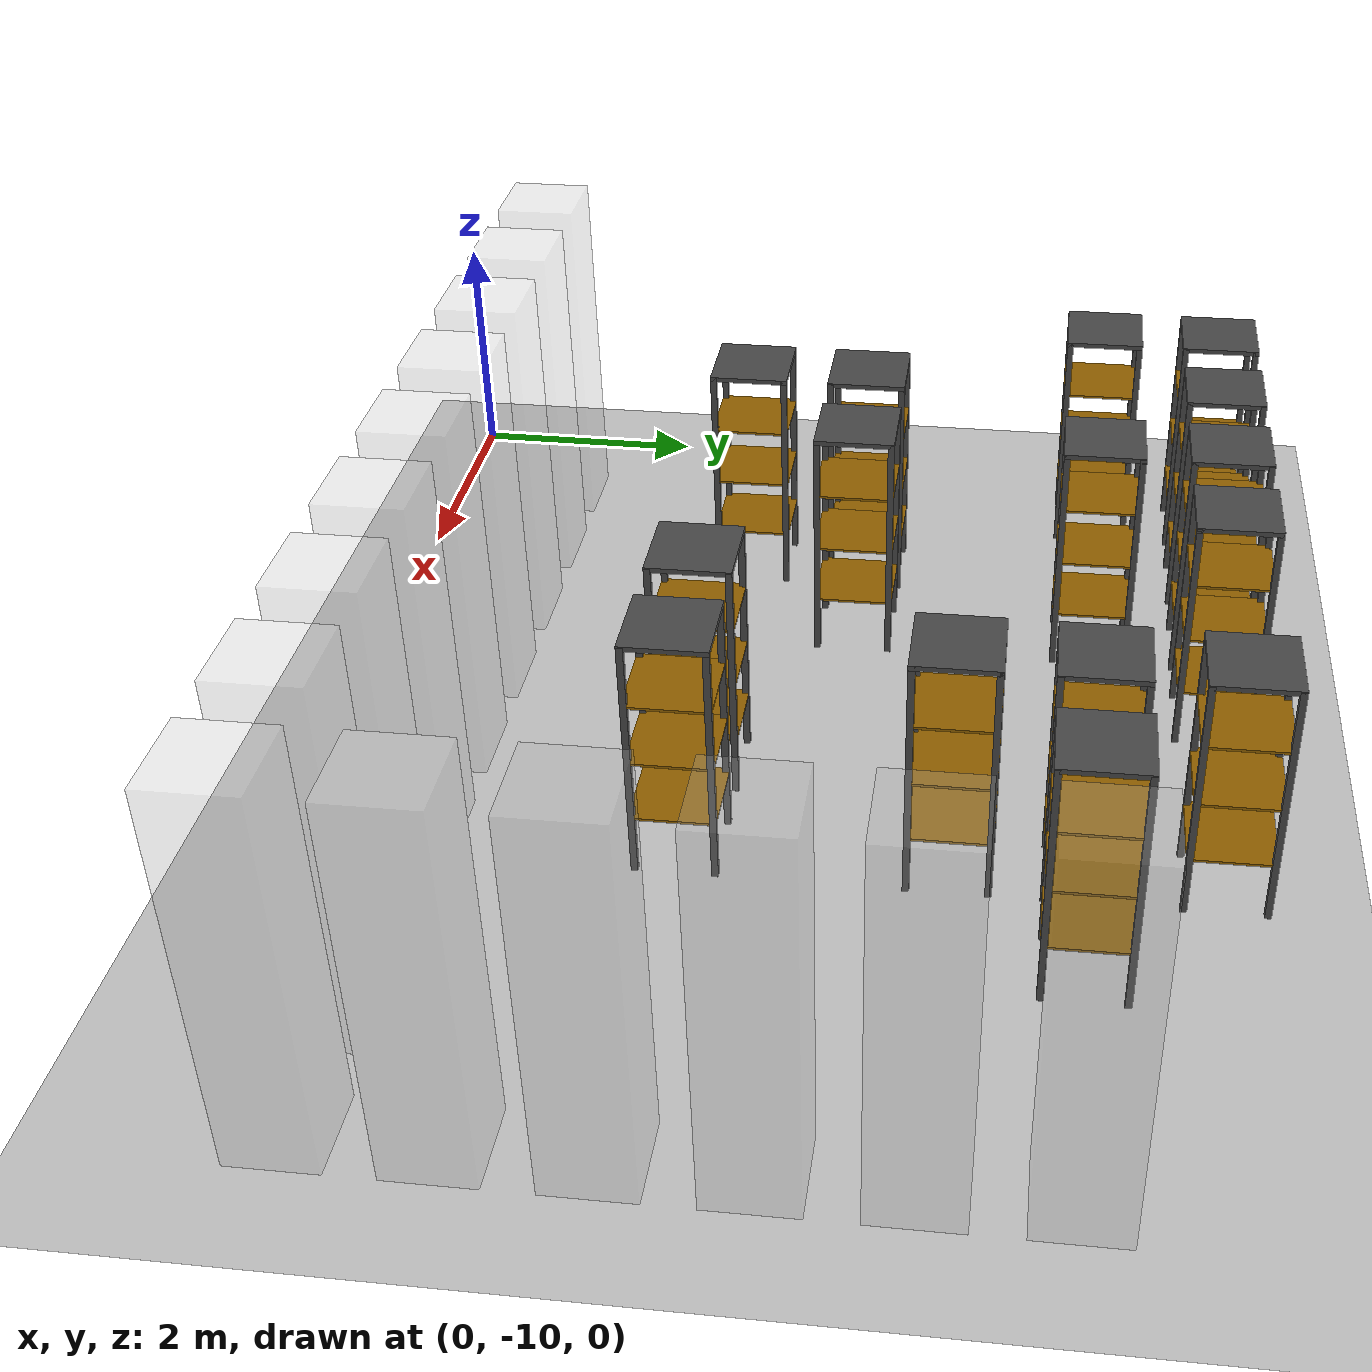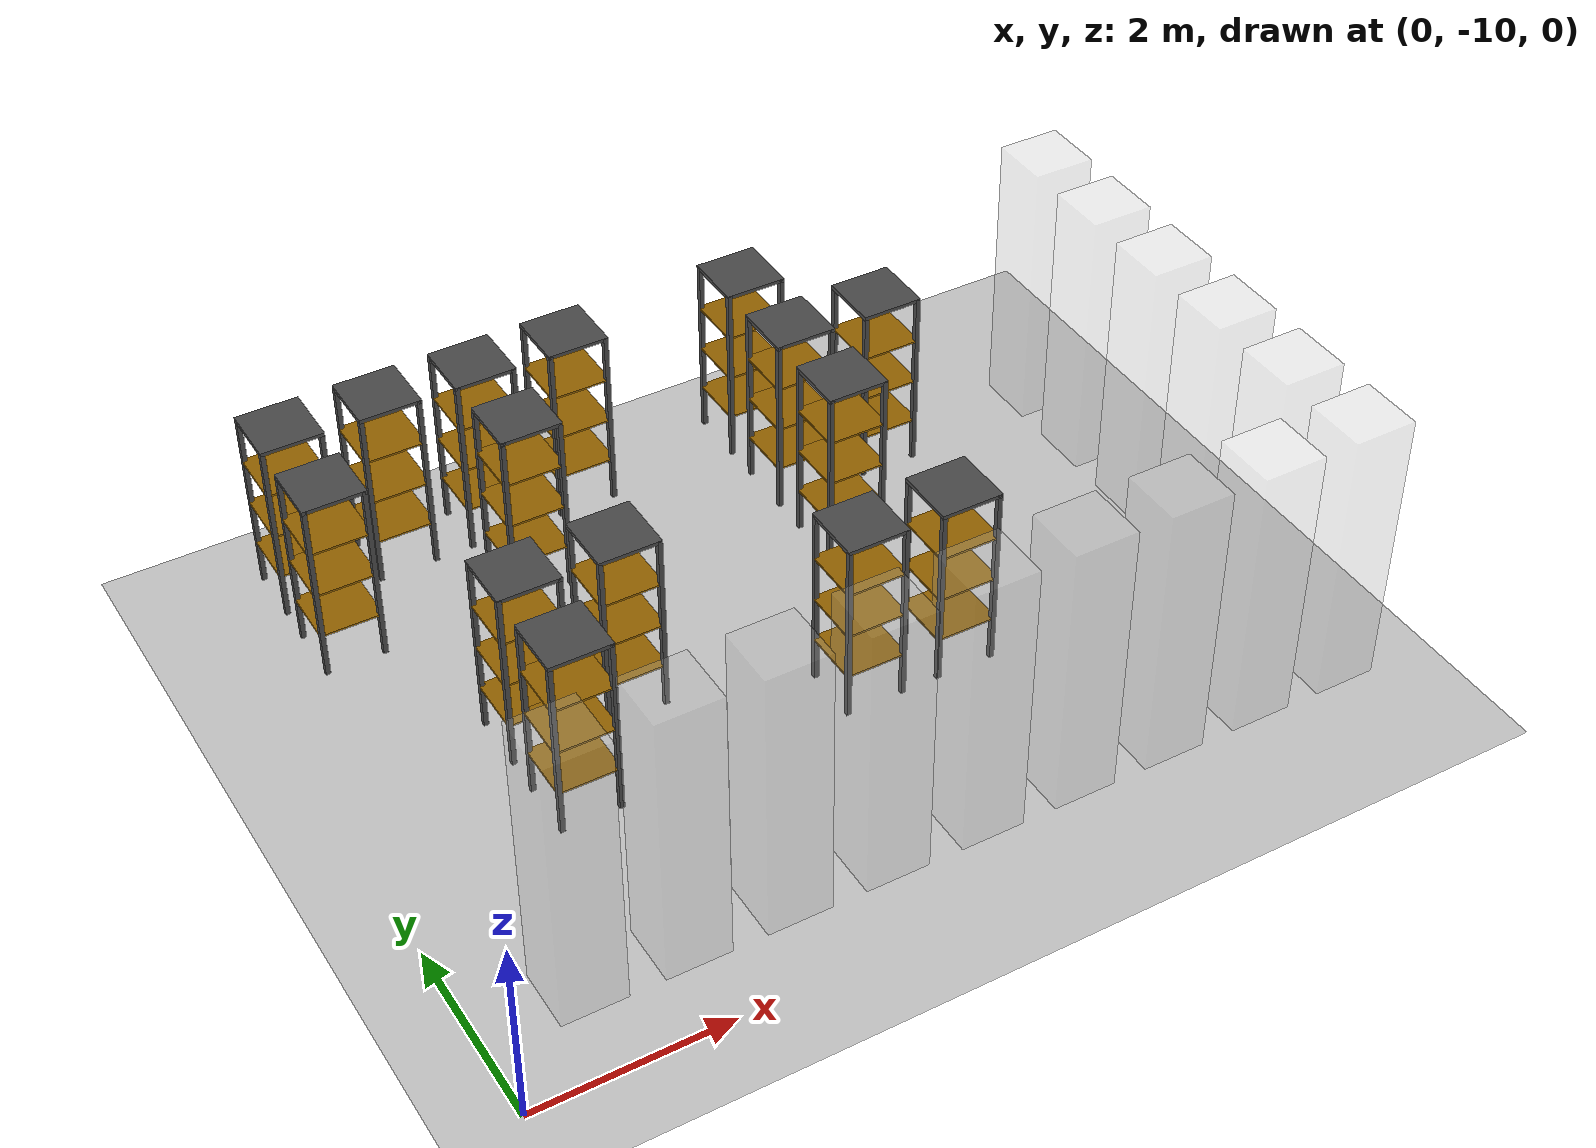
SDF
<sdf version="1.6">
 <world name="default">
  <model name="ground_plane">
   <static>1</static>
   <link name="link">
    <collision name="collision">
     <geometry><plane><normal>0 0 1</normal><size>50 50</size></plane></geometry>
     <surface><friction><ode><mu>100</mu><mu2>50</mu2></ode></friction></surface>
    </collision>
    <visual name="visual">
     <cast_shadows>0</cast_shadows>
     <geometry><plane><normal>0 0 1</normal><size>100 100</size></plane></geometry>
     <material>
      <script><uri>file://media/materials/scripts/gazebo.material</uri><name>Gazebo/Grey</name></script>
     </material>
    </visual>
    <velocity_decay><linear>0</linear><angular>0</angular></velocity_decay>
   </link>
  </model>
  <model name="pole_0_10">
   <static>1</static>
   <link name="main_block">
    <pose>0 0 1.5 0 -0 0</pose>
    <collision name="collision"><geometry><box><size>0.65 0.65 3</size></box></geometry></collision>
    <visual name="visual">
     <geometry><box><size>0.65 0.65 3</size></box></geometry>
     <material><ambient>0.5 0.5 0.5 0.25</ambient><diffuse>0.75 0.75 0.75 0.25</diffuse></material>
    </visual>
   </link>
   <pose>1 -9 0 0 -0 0</pose>
  </model>
  <model name="pole_0_11">
   <static>1</static>
   <link name="main_block">
    <pose>0 0 1.5 0 -0 0</pose>
    <collision name="collision"><geometry><box><size>0.65 0.65 3</size></box></geometry></collision>
    <visual name="visual">
     <geometry><box><size>0.65 0.65 3</size></box></geometry>
     <material><ambient>0.5 0.5 0.5 0.25</ambient><diffuse>0.75 0.75 0.75 0.25</diffuse></material>
    </visual>
   </link>
   <pose>2 -9 0 0 -0 0</pose>
  </model>
  <model name="pole_0_12">
   <static>1</static>
   <link name="main_block">
    <pose>0 0 1.5 0 -0 0</pose>
    <collision name="collision"><geometry><box><size>0.65 0.65 3</size></box></geometry></collision>
    <visual name="visual">
     <geometry><box><size>0.65 0.65 3</size></box></geometry>
     <material><ambient>0.5 0.5 0.5 0.25</ambient><diffuse>0.75 0.75 0.75 0.25</diffuse></material>
    </visual>
   </link>
   <pose>3 -9 0 0 -0 0</pose>
  </model>
  <model name="pole_0_13">
   <static>1</static>
   <link name="main_block">
    <pose>0 0 1.5 0 -0 0</pose>
    <collision name="collision"><geometry><box><size>0.65 0.65 3</size></box></geometry></collision>
    <visual name="visual">
     <geometry><box><size>0.65 0.65 3</size></box></geometry>
     <material><ambient>0.5 0.5 0.5 0.25</ambient><diffuse>0.75 0.75 0.75 0.25</diffuse></material>
    </visual>
   </link>
   <pose>4 -9 0 0 -0 0</pose>
  </model>
  <model name="pole_0_14">
   <static>1</static>
   <link name="main_block">
    <pose>0 0 1.5 0 -0 0</pose>
    <collision name="collision"><geometry><box><size>0.65 0.65 3</size></box></geometry></collision>
    <visual name="visual">
     <geometry><box><size>0.65 0.65 3</size></box></geometry>
     <material><ambient>0.5 0.5 0.5 0.25</ambient><diffuse>0.75 0.75 0.75 0.25</diffuse></material>
    </visual>
   </link>
   <pose>5 -9 0 0 -0 0</pose>
  </model>
  <model name="pole_0_15">
   <static>1</static>
   <link name="main_block">
    <pose>0 0 1.5 0 -0 0</pose>
    <collision name="collision"><geometry><box><size>0.65 0.65 3</size></box></geometry></collision>
    <visual name="visual">
     <geometry><box><size>0.65 0.65 3</size></box></geometry>
     <material><ambient>0.5 0.5 0.5 0.25</ambient><diffuse>0.75 0.75 0.75 0.25</diffuse></material>
    </visual>
   </link>
   <pose>6 -9 0 0 -0 0</pose>
  </model>
  <model name="pole_0_16">
   <static>1</static>
   <link name="main_block">
    <pose>0 0 1.5 0 -0 0</pose>
    <collision name="collision"><geometry><box><size>0.65 0.65 3</size></box></geometry></collision>
    <visual name="visual">
     <geometry><box><size>0.65 0.65 3</size></box></geometry>
     <material><ambient>0.5 0.5 0.5 0.25</ambient><diffuse>0.75 0.75 0.75 0.25</diffuse></material>
    </visual>
   </link>
   <pose>7 -9 0 0 -0 0</pose>
  </model>
  <model name="pole_0_17">
   <static>1</static>
   <link name="main_block">
    <pose>0 0 1.5 0 -0 0</pose>
    <collision name="collision"><geometry><box><size>0.65 0.65 3</size></box></geometry></collision>
    <visual name="visual">
     <geometry><box><size>0.65 0.65 3</size></box></geometry>
     <material><ambient>0.5 0.5 0.5 0.25</ambient><diffuse>0.75 0.75 0.75 0.25</diffuse></material>
    </visual>
   </link>
   <pose>8 -9 0 0 -0 0</pose>
  </model>
  <model name="pole_0_18">
   <static>1</static>
   <link name="main_block">
    <pose>0 0 1.5 0 -0 0</pose>
    <collision name="collision"><geometry><box><size>0.65 0.65 3</size></box></geometry></collision>
    <visual name="visual">
     <geometry><box><size>0.65 0.65 3</size></box></geometry>
     <material><ambient>0.5 0.5 0.5 0.25</ambient><diffuse>0.75 0.75 0.75 0.25</diffuse></material>
    </visual>
   </link>
   <pose>9 -9 0 0 -0 0</pose>
  </model>
  <model name="pole_1_18">
   <static>1</static>
   <link name="main_block">
    <pose>0 0 1.5 0 -0 0</pose>
    <collision name="collision"><geometry><box><size>0.65 0.65 3</size></box></geometry></collision>
    <visual name="visual">
     <geometry><box><size>0.65 0.65 3</size></box></geometry>
     <material><ambient>0.5 0.5 0.5 0.25</ambient><diffuse>0.75 0.75 0.75 0.25</diffuse></material>
    </visual>
   </link>
   <pose>9 -8 0 0 -0 0</pose>
  </model>
  <model name="warehouse_shelf_2_11">
   <static>1</static>
   <link name="main_block">
    <pose>0 0 1.25 0 -0 0</pose>
    <collision name="collision"><geometry><box><size>0.65 0.65 1.5</size></box></geometry></collision>
   </link>
   <link name="leg_1">
    <pose>0.3 0.3 1 0 -0 0</pose>
    <collision name="collision"><geometry><box><size>0.05 0.05 2</size></box></geometry></collision>
    <visual name="visual">
     <geometry><box><size>0.05 0.05 2</size></box></geometry>
     <material><ambient>0.2 0.2 0.2 1</ambient><diffuse>0.3 0.3 0.3 1</diffuse></material>
    </visual>
   </link>
   <link name="leg_2">
    <pose>-0.3 0.3 1 0 -0 0</pose>
    <collision name="collision"><geometry><box><size>0.05 0.05 2</size></box></geometry></collision>
    <visual name="visual">
     <geometry><box><size>0.05 0.05 2</size></box></geometry>
     <material><ambient>0.2 0.2 0.2 1</ambient><diffuse>0.3 0.3 0.3 1</diffuse></material>
    </visual>
   </link>
   <link name="leg_3">
    <pose>-0.3 -0.3 1 0 -0 0</pose>
    <collision name="collision"><geometry><box><size>0.05 0.05 2</size></box></geometry></collision>
    <visual name="visual">
     <geometry><box><size>0.05 0.05 2</size></box></geometry>
     <material><ambient>0.2 0.2 0.2 1</ambient><diffuse>0.3 0.3 0.3 1</diffuse></material>
    </visual>
   </link>
   <link name="leg_4">
    <pose>0.3 -0.3 1 0 -0 0</pose>
    <collision name="collision"><geometry><box><size>0.05 0.05 2</size></box></geometry></collision>
    <visual name="visual">
     <geometry><box><size>0.05 0.05 2</size></box></geometry>
     <material><ambient>0.2 0.2 0.2 1</ambient><diffuse>0.3 0.3 0.3 1</diffuse></material>
    </visual>
   </link>
   <link name="shelf_0">
    <pose>0 0 0.49 0 -0 0</pose>
    <visual name="visual">
     <geometry><box><size>0.649 0.649 0.02</size></box></geometry>
     <material><ambient>0.2 0.05 0 1</ambient><diffuse>0.6 0.4 0 1</diffuse></material>
    </visual>
   </link>
   <link name="shelf_1">
    <pose>0 0 0.99 0 -0 0</pose>
    <visual name="visual">
     <geometry><box><size>0.649 0.649 0.02</size></box></geometry>
     <material><ambient>0.2 0.05 0 1</ambient><diffuse>0.6 0.4 0 1</diffuse></material>
    </visual>
   </link>
   <link name="shelf_2">
    <pose>0 0 1.49 0 -0 0</pose>
    <visual name="visual">
     <geometry><box><size>0.649 0.649 0.02</size></box></geometry>
     <material><ambient>0.2 0.05 0 1</ambient><diffuse>0.6 0.4 0 1</diffuse></material>
    </visual>
   </link>
   <link name="shelf_top">
    <pose>0 0 1.99 0 -0 0</pose>
    <visual name="visual">
     <geometry><box><size>0.65 0.65 0.04</size></box></geometry>
     <material><ambient>0.2 0.2 0.2 1</ambient><diffuse>0.3 0.3 0.3 1</diffuse></material>
    </visual>
   </link>
   <pose>2 -7 0 0 -0 0</pose>
  </model>
  <model name="warehouse_shelf_2_14">
   <static>1</static>
   <link name="main_block">
    <pose>0 0 1.25 0 -0 0</pose>
    <collision name="collision"><geometry><box><size>0.65 0.65 1.5</size></box></geometry></collision>
   </link>
   <link name="leg_1">
    <pose>0.3 0.3 1 0 -0 0</pose>
    <collision name="collision"><geometry><box><size>0.05 0.05 2</size></box></geometry></collision>
    <visual name="visual">
     <geometry><box><size>0.05 0.05 2</size></box></geometry>
     <material><ambient>0.2 0.2 0.2 1</ambient><diffuse>0.3 0.3 0.3 1</diffuse></material>
    </visual>
   </link>
   <link name="leg_2">
    <pose>-0.3 0.3 1 0 -0 0</pose>
    <collision name="collision"><geometry><box><size>0.05 0.05 2</size></box></geometry></collision>
    <visual name="visual">
     <geometry><box><size>0.05 0.05 2</size></box></geometry>
     <material><ambient>0.2 0.2 0.2 1</ambient><diffuse>0.3 0.3 0.3 1</diffuse></material>
    </visual>
   </link>
   <link name="leg_3">
    <pose>-0.3 -0.3 1 0 -0 0</pose>
    <collision name="collision"><geometry><box><size>0.05 0.05 2</size></box></geometry></collision>
    <visual name="visual">
     <geometry><box><size>0.05 0.05 2</size></box></geometry>
     <material><ambient>0.2 0.2 0.2 1</ambient><diffuse>0.3 0.3 0.3 1</diffuse></material>
    </visual>
   </link>
   <link name="leg_4">
    <pose>0.3 -0.3 1 0 -0 0</pose>
    <collision name="collision"><geometry><box><size>0.05 0.05 2</size></box></geometry></collision>
    <visual name="visual">
     <geometry><box><size>0.05 0.05 2</size></box></geometry>
     <material><ambient>0.2 0.2 0.2 1</ambient><diffuse>0.3 0.3 0.3 1</diffuse></material>
    </visual>
   </link>
   <link name="shelf_0">
    <pose>0 0 0.49 0 -0 0</pose>
    <visual name="visual">
     <geometry><box><size>0.649 0.649 0.02</size></box></geometry>
     <material><ambient>0.2 0.05 0 1</ambient><diffuse>0.6 0.4 0 1</diffuse></material>
    </visual>
   </link>
   <link name="shelf_1">
    <pose>0 0 0.99 0 -0 0</pose>
    <visual name="visual">
     <geometry><box><size>0.649 0.649 0.02</size></box></geometry>
     <material><ambient>0.2 0.05 0 1</ambient><diffuse>0.6 0.4 0 1</diffuse></material>
    </visual>
   </link>
   <link name="shelf_2">
    <pose>0 0 1.49 0 -0 0</pose>
    <visual name="visual">
     <geometry><box><size>0.649 0.649 0.02</size></box></geometry>
     <material><ambient>0.2 0.05 0 1</ambient><diffuse>0.6 0.4 0 1</diffuse></material>
    </visual>
   </link>
   <link name="shelf_top">
    <pose>0 0 1.99 0 -0 0</pose>
    <visual name="visual">
     <geometry><box><size>0.65 0.65 0.04</size></box></geometry>
     <material><ambient>0.2 0.2 0.2 1</ambient><diffuse>0.3 0.3 0.3 1</diffuse></material>
    </visual>
   </link>
   <pose>5 -7 0 0 -0 0</pose>
  </model>
  <model name="warehouse_shelf_2_15">
   <static>1</static>
   <link name="main_block">
    <pose>0 0 1.25 0 -0 0</pose>
    <collision name="collision"><geometry><box><size>0.65 0.65 1.5</size></box></geometry></collision>
   </link>
   <link name="leg_1">
    <pose>0.3 0.3 1 0 -0 0</pose>
    <collision name="collision"><geometry><box><size>0.05 0.05 2</size></box></geometry></collision>
    <visual name="visual">
     <geometry><box><size>0.05 0.05 2</size></box></geometry>
     <material><ambient>0.2 0.2 0.2 1</ambient><diffuse>0.3 0.3 0.3 1</diffuse></material>
    </visual>
   </link>
   <link name="leg_2">
    <pose>-0.3 0.3 1 0 -0 0</pose>
    <collision name="collision"><geometry><box><size>0.05 0.05 2</size></box></geometry></collision>
    <visual name="visual">
     <geometry><box><size>0.05 0.05 2</size></box></geometry>
     <material><ambient>0.2 0.2 0.2 1</ambient><diffuse>0.3 0.3 0.3 1</diffuse></material>
    </visual>
   </link>
   <link name="leg_3">
    <pose>-0.3 -0.3 1 0 -0 0</pose>
    <collision name="collision"><geometry><box><size>0.05 0.05 2</size></box></geometry></collision>
    <visual name="visual">
     <geometry><box><size>0.05 0.05 2</size></box></geometry>
     <material><ambient>0.2 0.2 0.2 1</ambient><diffuse>0.3 0.3 0.3 1</diffuse></material>
    </visual>
   </link>
   <link name="leg_4">
    <pose>0.3 -0.3 1 0 -0 0</pose>
    <collision name="collision"><geometry><box><size>0.05 0.05 2</size></box></geometry></collision>
    <visual name="visual">
     <geometry><box><size>0.05 0.05 2</size></box></geometry>
     <material><ambient>0.2 0.2 0.2 1</ambient><diffuse>0.3 0.3 0.3 1</diffuse></material>
    </visual>
   </link>
   <link name="shelf_0">
    <pose>0 0 0.49 0 -0 0</pose>
    <visual name="visual">
     <geometry><box><size>0.649 0.649 0.02</size></box></geometry>
     <material><ambient>0.2 0.05 0 1</ambient><diffuse>0.6 0.4 0 1</diffuse></material>
    </visual>
   </link>
   <link name="shelf_1">
    <pose>0 0 0.99 0 -0 0</pose>
    <visual name="visual">
     <geometry><box><size>0.649 0.649 0.02</size></box></geometry>
     <material><ambient>0.2 0.05 0 1</ambient><diffuse>0.6 0.4 0 1</diffuse></material>
    </visual>
   </link>
   <link name="shelf_2">
    <pose>0 0 1.49 0 -0 0</pose>
    <visual name="visual">
     <geometry><box><size>0.649 0.649 0.02</size></box></geometry>
     <material><ambient>0.2 0.05 0 1</ambient><diffuse>0.6 0.4 0 1</diffuse></material>
    </visual>
   </link>
   <link name="shelf_top">
    <pose>0 0 1.99 0 -0 0</pose>
    <visual name="visual">
     <geometry><box><size>0.65 0.65 0.04</size></box></geometry>
     <material><ambient>0.2 0.2 0.2 1</ambient><diffuse>0.3 0.3 0.3 1</diffuse></material>
    </visual>
   </link>
   <pose>6 -7 0 0 -0 0</pose>
  </model>
  <model name="pole_2_18">
   <static>1</static>
   <link name="main_block">
    <pose>0 0 1.5 0 -0 0</pose>
    <collision name="collision"><geometry><box><size>0.65 0.65 3</size></box></geometry></collision>
    <visual name="visual">
     <geometry><box><size>0.65 0.65 3</size></box></geometry>
     <material><ambient>0.5 0.5 0.5 0.25</ambient><diffuse>0.75 0.75 0.75 0.25</diffuse></material>
    </visual>
   </link>
   <pose>9 -7 0 0 -0 0</pose>
  </model>
  <model name="warehouse_shelf_3_11">
   <static>1</static>
   <link name="main_block">
    <pose>0 0 1.25 0 -0 0</pose>
    <collision name="collision"><geometry><box><size>0.65 0.65 1.5</size></box></geometry></collision>
   </link>
   <link name="leg_1">
    <pose>0.3 0.3 1 0 -0 0</pose>
    <collision name="collision"><geometry><box><size>0.05 0.05 2</size></box></geometry></collision>
    <visual name="visual">
     <geometry><box><size>0.05 0.05 2</size></box></geometry>
     <material><ambient>0.2 0.2 0.2 1</ambient><diffuse>0.3 0.3 0.3 1</diffuse></material>
    </visual>
   </link>
   <link name="leg_2">
    <pose>-0.3 0.3 1 0 -0 0</pose>
    <collision name="collision"><geometry><box><size>0.05 0.05 2</size></box></geometry></collision>
    <visual name="visual">
     <geometry><box><size>0.05 0.05 2</size></box></geometry>
     <material><ambient>0.2 0.2 0.2 1</ambient><diffuse>0.3 0.3 0.3 1</diffuse></material>
    </visual>
   </link>
   <link name="leg_3">
    <pose>-0.3 -0.3 1 0 -0 0</pose>
    <collision name="collision"><geometry><box><size>0.05 0.05 2</size></box></geometry></collision>
    <visual name="visual">
     <geometry><box><size>0.05 0.05 2</size></box></geometry>
     <material><ambient>0.2 0.2 0.2 1</ambient><diffuse>0.3 0.3 0.3 1</diffuse></material>
    </visual>
   </link>
   <link name="leg_4">
    <pose>0.3 -0.3 1 0 -0 0</pose>
    <collision name="collision"><geometry><box><size>0.05 0.05 2</size></box></geometry></collision>
    <visual name="visual">
     <geometry><box><size>0.05 0.05 2</size></box></geometry>
     <material><ambient>0.2 0.2 0.2 1</ambient><diffuse>0.3 0.3 0.3 1</diffuse></material>
    </visual>
   </link>
   <link name="shelf_0">
    <pose>0 0 0.49 0 -0 0</pose>
    <visual name="visual">
     <geometry><box><size>0.649 0.649 0.02</size></box></geometry>
     <material><ambient>0.2 0.05 0 1</ambient><diffuse>0.6 0.4 0 1</diffuse></material>
    </visual>
   </link>
   <link name="shelf_1">
    <pose>0 0 0.99 0 -0 0</pose>
    <visual name="visual">
     <geometry><box><size>0.649 0.649 0.02</size></box></geometry>
     <material><ambient>0.2 0.05 0 1</ambient><diffuse>0.6 0.4 0 1</diffuse></material>
    </visual>
   </link>
   <link name="shelf_2">
    <pose>0 0 1.49 0 -0 0</pose>
    <visual name="visual">
     <geometry><box><size>0.649 0.649 0.02</size></box></geometry>
     <material><ambient>0.2 0.05 0 1</ambient><diffuse>0.6 0.4 0 1</diffuse></material>
    </visual>
   </link>
   <link name="shelf_top">
    <pose>0 0 1.99 0 -0 0</pose>
    <visual name="visual">
     <geometry><box><size>0.65 0.65 0.04</size></box></geometry>
     <material><ambient>0.2 0.2 0.2 1</ambient><diffuse>0.3 0.3 0.3 1</diffuse></material>
    </visual>
   </link>
   <pose>2 -6 0 0 -0 0</pose>
  </model>
  <model name="warehouse_shelf_3_12">
   <static>1</static>
   <link name="main_block">
    <pose>0 0 1.25 0 -0 0</pose>
    <collision name="collision"><geometry><box><size>0.65 0.65 1.5</size></box></geometry></collision>
   </link>
   <link name="leg_1">
    <pose>0.3 0.3 1 0 -0 0</pose>
    <collision name="collision"><geometry><box><size>0.05 0.05 2</size></box></geometry></collision>
    <visual name="visual">
     <geometry><box><size>0.05 0.05 2</size></box></geometry>
     <material><ambient>0.2 0.2 0.2 1</ambient><diffuse>0.3 0.3 0.3 1</diffuse></material>
    </visual>
   </link>
   <link name="leg_2">
    <pose>-0.3 0.3 1 0 -0 0</pose>
    <collision name="collision"><geometry><box><size>0.05 0.05 2</size></box></geometry></collision>
    <visual name="visual">
     <geometry><box><size>0.05 0.05 2</size></box></geometry>
     <material><ambient>0.2 0.2 0.2 1</ambient><diffuse>0.3 0.3 0.3 1</diffuse></material>
    </visual>
   </link>
   <link name="leg_3">
    <pose>-0.3 -0.3 1 0 -0 0</pose>
    <collision name="collision"><geometry><box><size>0.05 0.05 2</size></box></geometry></collision>
    <visual name="visual">
     <geometry><box><size>0.05 0.05 2</size></box></geometry>
     <material><ambient>0.2 0.2 0.2 1</ambient><diffuse>0.3 0.3 0.3 1</diffuse></material>
    </visual>
   </link>
   <link name="leg_4">
    <pose>0.3 -0.3 1 0 -0 0</pose>
    <collision name="collision"><geometry><box><size>0.05 0.05 2</size></box></geometry></collision>
    <visual name="visual">
     <geometry><box><size>0.05 0.05 2</size></box></geometry>
     <material><ambient>0.2 0.2 0.2 1</ambient><diffuse>0.3 0.3 0.3 1</diffuse></material>
    </visual>
   </link>
   <link name="shelf_0">
    <pose>0 0 0.49 0 -0 0</pose>
    <visual name="visual">
     <geometry><box><size>0.649 0.649 0.02</size></box></geometry>
     <material><ambient>0.2 0.05 0 1</ambient><diffuse>0.6 0.4 0 1</diffuse></material>
    </visual>
   </link>
   <link name="shelf_1">
    <pose>0 0 0.99 0 -0 0</pose>
    <visual name="visual">
     <geometry><box><size>0.649 0.649 0.02</size></box></geometry>
     <material><ambient>0.2 0.05 0 1</ambient><diffuse>0.6 0.4 0 1</diffuse></material>
    </visual>
   </link>
   <link name="shelf_2">
    <pose>0 0 1.49 0 -0 0</pose>
    <visual name="visual">
     <geometry><box><size>0.649 0.649 0.02</size></box></geometry>
     <material><ambient>0.2 0.05 0 1</ambient><diffuse>0.6 0.4 0 1</diffuse></material>
    </visual>
   </link>
   <link name="shelf_top">
    <pose>0 0 1.99 0 -0 0</pose>
    <visual name="visual">
     <geometry><box><size>0.65 0.65 0.04</size></box></geometry>
     <material><ambient>0.2 0.2 0.2 1</ambient><diffuse>0.3 0.3 0.3 1</diffuse></material>
    </visual>
   </link>
   <pose>3 -6 0 0 -0 0</pose>
  </model>
  <model name="pole_3_18">
   <static>1</static>
   <link name="main_block">
    <pose>0 0 1.5 0 -0 0</pose>
    <collision name="collision"><geometry><box><size>0.65 0.65 3</size></box></geometry></collision>
    <visual name="visual">
     <geometry><box><size>0.65 0.65 3</size></box></geometry>
     <material><ambient>0.5 0.5 0.5 0.25</ambient><diffuse>0.75 0.75 0.75 0.25</diffuse></material>
    </visual>
   </link>
   <pose>9 -6 0 0 -0 0</pose>
  </model>
  <model name="warehouse_shelf_4_15">
   <static>1</static>
   <link name="main_block">
    <pose>0 0 1.25 0 -0 0</pose>
    <collision name="collision"><geometry><box><size>0.65 0.65 1.5</size></box></geometry></collision>
   </link>
   <link name="leg_1">
    <pose>0.3 0.3 1 0 -0 0</pose>
    <collision name="collision"><geometry><box><size>0.05 0.05 2</size></box></geometry></collision>
    <visual name="visual">
     <geometry><box><size>0.05 0.05 2</size></box></geometry>
     <material><ambient>0.2 0.2 0.2 1</ambient><diffuse>0.3 0.3 0.3 1</diffuse></material>
    </visual>
   </link>
   <link name="leg_2">
    <pose>-0.3 0.3 1 0 -0 0</pose>
    <collision name="collision"><geometry><box><size>0.05 0.05 2</size></box></geometry></collision>
    <visual name="visual">
     <geometry><box><size>0.05 0.05 2</size></box></geometry>
     <material><ambient>0.2 0.2 0.2 1</ambient><diffuse>0.3 0.3 0.3 1</diffuse></material>
    </visual>
   </link>
   <link name="leg_3">
    <pose>-0.3 -0.3 1 0 -0 0</pose>
    <collision name="collision"><geometry><box><size>0.05 0.05 2</size></box></geometry></collision>
    <visual name="visual">
     <geometry><box><size>0.05 0.05 2</size></box></geometry>
     <material><ambient>0.2 0.2 0.2 1</ambient><diffuse>0.3 0.3 0.3 1</diffuse></material>
    </visual>
   </link>
   <link name="leg_4">
    <pose>0.3 -0.3 1 0 -0 0</pose>
    <collision name="collision"><geometry><box><size>0.05 0.05 2</size></box></geometry></collision>
    <visual name="visual">
     <geometry><box><size>0.05 0.05 2</size></box></geometry>
     <material><ambient>0.2 0.2 0.2 1</ambient><diffuse>0.3 0.3 0.3 1</diffuse></material>
    </visual>
   </link>
   <link name="shelf_0">
    <pose>0 0 0.49 0 -0 0</pose>
    <visual name="visual">
     <geometry><box><size>0.649 0.649 0.02</size></box></geometry>
     <material><ambient>0.2 0.05 0 1</ambient><diffuse>0.6 0.4 0 1</diffuse></material>
    </visual>
   </link>
   <link name="shelf_1">
    <pose>0 0 0.99 0 -0 0</pose>
    <visual name="visual">
     <geometry><box><size>0.649 0.649 0.02</size></box></geometry>
     <material><ambient>0.2 0.05 0 1</ambient><diffuse>0.6 0.4 0 1</diffuse></material>
    </visual>
   </link>
   <link name="shelf_2">
    <pose>0 0 1.49 0 -0 0</pose>
    <visual name="visual">
     <geometry><box><size>0.649 0.649 0.02</size></box></geometry>
     <material><ambient>0.2 0.05 0 1</ambient><diffuse>0.6 0.4 0 1</diffuse></material>
    </visual>
   </link>
   <link name="shelf_top">
    <pose>0 0 1.99 0 -0 0</pose>
    <visual name="visual">
     <geometry><box><size>0.65 0.65 0.04</size></box></geometry>
     <material><ambient>0.2 0.2 0.2 1</ambient><diffuse>0.3 0.3 0.3 1</diffuse></material>
    </visual>
   </link>
   <pose>6 -5 0 0 -0 0</pose>
  </model>
  <model name="pole_4_18">
   <static>1</static>
   <link name="main_block">
    <pose>0 0 1.5 0 -0 0</pose>
    <collision name="collision"><geometry><box><size>0.65 0.65 3</size></box></geometry></collision>
    <visual name="visual">
     <geometry><box><size>0.65 0.65 3</size></box></geometry>
     <material><ambient>0.5 0.5 0.5 0.25</ambient><diffuse>0.75 0.75 0.75 0.25</diffuse></material>
    </visual>
   </link>
   <pose>9 -5 0 0 -0 0</pose>
  </model>
  <model name="warehouse_shelf_5_10">
   <static>1</static>
   <link name="main_block">
    <pose>0 0 1.25 0 -0 0</pose>
    <collision name="collision"><geometry><box><size>0.65 0.65 1.5</size></box></geometry></collision>
   </link>
   <link name="leg_1">
    <pose>0.3 0.3 1 0 -0 0</pose>
    <collision name="collision"><geometry><box><size>0.05 0.05 2</size></box></geometry></collision>
    <visual name="visual">
     <geometry><box><size>0.05 0.05 2</size></box></geometry>
     <material><ambient>0.2 0.2 0.2 1</ambient><diffuse>0.3 0.3 0.3 1</diffuse></material>
    </visual>
   </link>
   <link name="leg_2">
    <pose>-0.3 0.3 1 0 -0 0</pose>
    <collision name="collision"><geometry><box><size>0.05 0.05 2</size></box></geometry></collision>
    <visual name="visual">
     <geometry><box><size>0.05 0.05 2</size></box></geometry>
     <material><ambient>0.2 0.2 0.2 1</ambient><diffuse>0.3 0.3 0.3 1</diffuse></material>
    </visual>
   </link>
   <link name="leg_3">
    <pose>-0.3 -0.3 1 0 -0 0</pose>
    <collision name="collision"><geometry><box><size>0.05 0.05 2</size></box></geometry></collision>
    <visual name="visual">
     <geometry><box><size>0.05 0.05 2</size></box></geometry>
     <material><ambient>0.2 0.2 0.2 1</ambient><diffuse>0.3 0.3 0.3 1</diffuse></material>
    </visual>
   </link>
   <link name="leg_4">
    <pose>0.3 -0.3 1 0 -0 0</pose>
    <collision name="collision"><geometry><box><size>0.05 0.05 2</size></box></geometry></collision>
    <visual name="visual">
     <geometry><box><size>0.05 0.05 2</size></box></geometry>
     <material><ambient>0.2 0.2 0.2 1</ambient><diffuse>0.3 0.3 0.3 1</diffuse></material>
    </visual>
   </link>
   <link name="shelf_0">
    <pose>0 0 0.49 0 -0 0</pose>
    <visual name="visual">
     <geometry><box><size>0.649 0.649 0.02</size></box></geometry>
     <material><ambient>0.2 0.05 0 1</ambient><diffuse>0.6 0.4 0 1</diffuse></material>
    </visual>
   </link>
   <link name="shelf_1">
    <pose>0 0 0.99 0 -0 0</pose>
    <visual name="visual">
     <geometry><box><size>0.649 0.649 0.02</size></box></geometry>
     <material><ambient>0.2 0.05 0 1</ambient><diffuse>0.6 0.4 0 1</diffuse></material>
    </visual>
   </link>
   <link name="shelf_2">
    <pose>0 0 1.49 0 -0 0</pose>
    <visual name="visual">
     <geometry><box><size>0.649 0.649 0.02</size></box></geometry>
     <material><ambient>0.2 0.05 0 1</ambient><diffuse>0.6 0.4 0 1</diffuse></material>
    </visual>
   </link>
   <link name="shelf_top">
    <pose>0 0 1.99 0 -0 0</pose>
    <visual name="visual">
     <geometry><box><size>0.65 0.65 0.04</size></box></geometry>
     <material><ambient>0.2 0.2 0.2 1</ambient><diffuse>0.3 0.3 0.3 1</diffuse></material>
    </visual>
   </link>
   <pose>1 -4 0 0 -0 0</pose>
  </model>
  <model name="warehouse_shelf_5_12">
   <static>1</static>
   <link name="main_block">
    <pose>0 0 1.25 0 -0 0</pose>
    <collision name="collision"><geometry><box><size>0.65 0.65 1.5</size></box></geometry></collision>
   </link>
   <link name="leg_1">
    <pose>0.3 0.3 1 0 -0 0</pose>
    <collision name="collision"><geometry><box><size>0.05 0.05 2</size></box></geometry></collision>
    <visual name="visual">
     <geometry><box><size>0.05 0.05 2</size></box></geometry>
     <material><ambient>0.2 0.2 0.2 1</ambient><diffuse>0.3 0.3 0.3 1</diffuse></material>
    </visual>
   </link>
   <link name="leg_2">
    <pose>-0.3 0.3 1 0 -0 0</pose>
    <collision name="collision"><geometry><box><size>0.05 0.05 2</size></box></geometry></collision>
    <visual name="visual">
     <geometry><box><size>0.05 0.05 2</size></box></geometry>
     <material><ambient>0.2 0.2 0.2 1</ambient><diffuse>0.3 0.3 0.3 1</diffuse></material>
    </visual>
   </link>
   <link name="leg_3">
    <pose>-0.3 -0.3 1 0 -0 0</pose>
    <collision name="collision"><geometry><box><size>0.05 0.05 2</size></box></geometry></collision>
    <visual name="visual">
     <geometry><box><size>0.05 0.05 2</size></box></geometry>
     <material><ambient>0.2 0.2 0.2 1</ambient><diffuse>0.3 0.3 0.3 1</diffuse></material>
    </visual>
   </link>
   <link name="leg_4">
    <pose>0.3 -0.3 1 0 -0 0</pose>
    <collision name="collision"><geometry><box><size>0.05 0.05 2</size></box></geometry></collision>
    <visual name="visual">
     <geometry><box><size>0.05 0.05 2</size></box></geometry>
     <material><ambient>0.2 0.2 0.2 1</ambient><diffuse>0.3 0.3 0.3 1</diffuse></material>
    </visual>
   </link>
   <link name="shelf_0">
    <pose>0 0 0.49 0 -0 0</pose>
    <visual name="visual">
     <geometry><box><size>0.649 0.649 0.02</size></box></geometry>
     <material><ambient>0.2 0.05 0 1</ambient><diffuse>0.6 0.4 0 1</diffuse></material>
    </visual>
   </link>
   <link name="shelf_1">
    <pose>0 0 0.99 0 -0 0</pose>
    <visual name="visual">
     <geometry><box><size>0.649 0.649 0.02</size></box></geometry>
     <material><ambient>0.2 0.05 0 1</ambient><diffuse>0.6 0.4 0 1</diffuse></material>
    </visual>
   </link>
   <link name="shelf_2">
    <pose>0 0 1.49 0 -0 0</pose>
    <visual name="visual">
     <geometry><box><size>0.649 0.649 0.02</size></box></geometry>
     <material><ambient>0.2 0.05 0 1</ambient><diffuse>0.6 0.4 0 1</diffuse></material>
    </visual>
   </link>
   <link name="shelf_top">
    <pose>0 0 1.99 0 -0 0</pose>
    <visual name="visual">
     <geometry><box><size>0.65 0.65 0.04</size></box></geometry>
     <material><ambient>0.2 0.2 0.2 1</ambient><diffuse>0.3 0.3 0.3 1</diffuse></material>
    </visual>
   </link>
   <pose>3 -4 0 0 -0 0</pose>
  </model>
  <model name="warehouse_shelf_5_15">
   <static>1</static>
   <link name="main_block">
    <pose>0 0 1.25 0 -0 0</pose>
    <collision name="collision"><geometry><box><size>0.65 0.65 1.5</size></box></geometry></collision>
   </link>
   <link name="leg_1">
    <pose>0.3 0.3 1 0 -0 0</pose>
    <collision name="collision"><geometry><box><size>0.05 0.05 2</size></box></geometry></collision>
    <visual name="visual">
     <geometry><box><size>0.05 0.05 2</size></box></geometry>
     <material><ambient>0.2 0.2 0.2 1</ambient><diffuse>0.3 0.3 0.3 1</diffuse></material>
    </visual>
   </link>
   <link name="leg_2">
    <pose>-0.3 0.3 1 0 -0 0</pose>
    <collision name="collision"><geometry><box><size>0.05 0.05 2</size></box></geometry></collision>
    <visual name="visual">
     <geometry><box><size>0.05 0.05 2</size></box></geometry>
     <material><ambient>0.2 0.2 0.2 1</ambient><diffuse>0.3 0.3 0.3 1</diffuse></material>
    </visual>
   </link>
   <link name="leg_3">
    <pose>-0.3 -0.3 1 0 -0 0</pose>
    <collision name="collision"><geometry><box><size>0.05 0.05 2</size></box></geometry></collision>
    <visual name="visual">
     <geometry><box><size>0.05 0.05 2</size></box></geometry>
     <material><ambient>0.2 0.2 0.2 1</ambient><diffuse>0.3 0.3 0.3 1</diffuse></material>
    </visual>
   </link>
   <link name="leg_4">
    <pose>0.3 -0.3 1 0 -0 0</pose>
    <collision name="collision"><geometry><box><size>0.05 0.05 2</size></box></geometry></collision>
    <visual name="visual">
     <geometry><box><size>0.05 0.05 2</size></box></geometry>
     <material><ambient>0.2 0.2 0.2 1</ambient><diffuse>0.3 0.3 0.3 1</diffuse></material>
    </visual>
   </link>
   <link name="shelf_0">
    <pose>0 0 0.49 0 -0 0</pose>
    <visual name="visual">
     <geometry><box><size>0.649 0.649 0.02</size></box></geometry>
     <material><ambient>0.2 0.05 0 1</ambient><diffuse>0.6 0.4 0 1</diffuse></material>
    </visual>
   </link>
   <link name="shelf_1">
    <pose>0 0 0.99 0 -0 0</pose>
    <visual name="visual">
     <geometry><box><size>0.649 0.649 0.02</size></box></geometry>
     <material><ambient>0.2 0.05 0 1</ambient><diffuse>0.6 0.4 0 1</diffuse></material>
    </visual>
   </link>
   <link name="shelf_2">
    <pose>0 0 1.49 0 -0 0</pose>
    <visual name="visual">
     <geometry><box><size>0.649 0.649 0.02</size></box></geometry>
     <material><ambient>0.2 0.05 0 1</ambient><diffuse>0.6 0.4 0 1</diffuse></material>
    </visual>
   </link>
   <link name="shelf_top">
    <pose>0 0 1.99 0 -0 0</pose>
    <visual name="visual">
     <geometry><box><size>0.65 0.65 0.04</size></box></geometry>
     <material><ambient>0.2 0.2 0.2 1</ambient><diffuse>0.3 0.3 0.3 1</diffuse></material>
    </visual>
   </link>
   <pose>6 -4 0 0 -0 0</pose>
  </model>
  <model name="warehouse_shelf_5_16">
   <static>1</static>
   <link name="main_block">
    <pose>0 0 1.25 0 -0 0</pose>
    <collision name="collision"><geometry><box><size>0.65 0.65 1.5</size></box></geometry></collision>
   </link>
   <link name="leg_1">
    <pose>0.3 0.3 1 0 -0 0</pose>
    <collision name="collision"><geometry><box><size>0.05 0.05 2</size></box></geometry></collision>
    <visual name="visual">
     <geometry><box><size>0.05 0.05 2</size></box></geometry>
     <material><ambient>0.2 0.2 0.2 1</ambient><diffuse>0.3 0.3 0.3 1</diffuse></material>
    </visual>
   </link>
   <link name="leg_2">
    <pose>-0.3 0.3 1 0 -0 0</pose>
    <collision name="collision"><geometry><box><size>0.05 0.05 2</size></box></geometry></collision>
    <visual name="visual">
     <geometry><box><size>0.05 0.05 2</size></box></geometry>
     <material><ambient>0.2 0.2 0.2 1</ambient><diffuse>0.3 0.3 0.3 1</diffuse></material>
    </visual>
   </link>
   <link name="leg_3">
    <pose>-0.3 -0.3 1 0 -0 0</pose>
    <collision name="collision"><geometry><box><size>0.05 0.05 2</size></box></geometry></collision>
    <visual name="visual">
     <geometry><box><size>0.05 0.05 2</size></box></geometry>
     <material><ambient>0.2 0.2 0.2 1</ambient><diffuse>0.3 0.3 0.3 1</diffuse></material>
    </visual>
   </link>
   <link name="leg_4">
    <pose>0.3 -0.3 1 0 -0 0</pose>
    <collision name="collision"><geometry><box><size>0.05 0.05 2</size></box></geometry></collision>
    <visual name="visual">
     <geometry><box><size>0.05 0.05 2</size></box></geometry>
     <material><ambient>0.2 0.2 0.2 1</ambient><diffuse>0.3 0.3 0.3 1</diffuse></material>
    </visual>
   </link>
   <link name="shelf_0">
    <pose>0 0 0.49 0 -0 0</pose>
    <visual name="visual">
     <geometry><box><size>0.649 0.649 0.02</size></box></geometry>
     <material><ambient>0.2 0.05 0 1</ambient><diffuse>0.6 0.4 0 1</diffuse></material>
    </visual>
   </link>
   <link name="shelf_1">
    <pose>0 0 0.99 0 -0 0</pose>
    <visual name="visual">
     <geometry><box><size>0.649 0.649 0.02</size></box></geometry>
     <material><ambient>0.2 0.05 0 1</ambient><diffuse>0.6 0.4 0 1</diffuse></material>
    </visual>
   </link>
   <link name="shelf_2">
    <pose>0 0 1.49 0 -0 0</pose>
    <visual name="visual">
     <geometry><box><size>0.649 0.649 0.02</size></box></geometry>
     <material><ambient>0.2 0.05 0 1</ambient><diffuse>0.6 0.4 0 1</diffuse></material>
    </visual>
   </link>
   <link name="shelf_top">
    <pose>0 0 1.99 0 -0 0</pose>
    <visual name="visual">
     <geometry><box><size>0.65 0.65 0.04</size></box></geometry>
     <material><ambient>0.2 0.2 0.2 1</ambient><diffuse>0.3 0.3 0.3 1</diffuse></material>
    </visual>
   </link>
   <pose>7 -4 0 0 -0 0</pose>
  </model>
  <model name="pole_5_18">
   <static>1</static>
   <link name="main_block">
    <pose>0 0 1.5 0 -0 0</pose>
    <collision name="collision"><geometry><box><size>0.65 0.65 3</size></box></geometry></collision>
    <visual name="visual">
     <geometry><box><size>0.65 0.65 3</size></box></geometry>
     <material><ambient>0.5 0.5 0.5 0.25</ambient><diffuse>0.75 0.75 0.75 0.25</diffuse></material>
    </visual>
   </link>
   <pose>9 -4 0 0 -0 0</pose>
  </model>
  <model name="warehouse_shelf_6_10">
   <static>1</static>
   <link name="main_block">
    <pose>0 0 1.25 0 -0 0</pose>
    <collision name="collision"><geometry><box><size>0.65 0.65 1.5</size></box></geometry></collision>
   </link>
   <link name="leg_1">
    <pose>0.3 0.3 1 0 -0 0</pose>
    <collision name="collision"><geometry><box><size>0.05 0.05 2</size></box></geometry></collision>
    <visual name="visual">
     <geometry><box><size>0.05 0.05 2</size></box></geometry>
     <material><ambient>0.2 0.2 0.2 1</ambient><diffuse>0.3 0.3 0.3 1</diffuse></material>
    </visual>
   </link>
   <link name="leg_2">
    <pose>-0.3 0.3 1 0 -0 0</pose>
    <collision name="collision"><geometry><box><size>0.05 0.05 2</size></box></geometry></collision>
    <visual name="visual">
     <geometry><box><size>0.05 0.05 2</size></box></geometry>
     <material><ambient>0.2 0.2 0.2 1</ambient><diffuse>0.3 0.3 0.3 1</diffuse></material>
    </visual>
   </link>
   <link name="leg_3">
    <pose>-0.3 -0.3 1 0 -0 0</pose>
    <collision name="collision"><geometry><box><size>0.05 0.05 2</size></box></geometry></collision>
    <visual name="visual">
     <geometry><box><size>0.05 0.05 2</size></box></geometry>
     <material><ambient>0.2 0.2 0.2 1</ambient><diffuse>0.3 0.3 0.3 1</diffuse></material>
    </visual>
   </link>
   <link name="leg_4">
    <pose>0.3 -0.3 1 0 -0 0</pose>
    <collision name="collision"><geometry><box><size>0.05 0.05 2</size></box></geometry></collision>
    <visual name="visual">
     <geometry><box><size>0.05 0.05 2</size></box></geometry>
     <material><ambient>0.2 0.2 0.2 1</ambient><diffuse>0.3 0.3 0.3 1</diffuse></material>
    </visual>
   </link>
   <link name="shelf_0">
    <pose>0 0 0.49 0 -0 0</pose>
    <visual name="visual">
     <geometry><box><size>0.649 0.649 0.02</size></box></geometry>
     <material><ambient>0.2 0.05 0 1</ambient><diffuse>0.6 0.4 0 1</diffuse></material>
    </visual>
   </link>
   <link name="shelf_1">
    <pose>0 0 0.99 0 -0 0</pose>
    <visual name="visual">
     <geometry><box><size>0.649 0.649 0.02</size></box></geometry>
     <material><ambient>0.2 0.05 0 1</ambient><diffuse>0.6 0.4 0 1</diffuse></material>
    </visual>
   </link>
   <link name="shelf_2">
    <pose>0 0 1.49 0 -0 0</pose>
    <visual name="visual">
     <geometry><box><size>0.649 0.649 0.02</size></box></geometry>
     <material><ambient>0.2 0.05 0 1</ambient><diffuse>0.6 0.4 0 1</diffuse></material>
    </visual>
   </link>
   <link name="shelf_top">
    <pose>0 0 1.99 0 -0 0</pose>
    <visual name="visual">
     <geometry><box><size>0.65 0.65 0.04</size></box></geometry>
     <material><ambient>0.2 0.2 0.2 1</ambient><diffuse>0.3 0.3 0.3 1</diffuse></material>
    </visual>
   </link>
   <pose>1 -3 0 0 -0 0</pose>
  </model>
  <model name="warehouse_shelf_6_11">
   <static>1</static>
   <link name="main_block">
    <pose>0 0 1.25 0 -0 0</pose>
    <collision name="collision"><geometry><box><size>0.65 0.65 1.5</size></box></geometry></collision>
   </link>
   <link name="leg_1">
    <pose>0.3 0.3 1 0 -0 0</pose>
    <collision name="collision"><geometry><box><size>0.05 0.05 2</size></box></geometry></collision>
    <visual name="visual">
     <geometry><box><size>0.05 0.05 2</size></box></geometry>
     <material><ambient>0.2 0.2 0.2 1</ambient><diffuse>0.3 0.3 0.3 1</diffuse></material>
    </visual>
   </link>
   <link name="leg_2">
    <pose>-0.3 0.3 1 0 -0 0</pose>
    <collision name="collision"><geometry><box><size>0.05 0.05 2</size></box></geometry></collision>
    <visual name="visual">
     <geometry><box><size>0.05 0.05 2</size></box></geometry>
     <material><ambient>0.2 0.2 0.2 1</ambient><diffuse>0.3 0.3 0.3 1</diffuse></material>
    </visual>
   </link>
   <link name="leg_3">
    <pose>-0.3 -0.3 1 0 -0 0</pose>
    <collision name="collision"><geometry><box><size>0.05 0.05 2</size></box></geometry></collision>
    <visual name="visual">
     <geometry><box><size>0.05 0.05 2</size></box></geometry>
     <material><ambient>0.2 0.2 0.2 1</ambient><diffuse>0.3 0.3 0.3 1</diffuse></material>
    </visual>
   </link>
   <link name="leg_4">
    <pose>0.3 -0.3 1 0 -0 0</pose>
    <collision name="collision"><geometry><box><size>0.05 0.05 2</size></box></geometry></collision>
    <visual name="visual">
     <geometry><box><size>0.05 0.05 2</size></box></geometry>
     <material><ambient>0.2 0.2 0.2 1</ambient><diffuse>0.3 0.3 0.3 1</diffuse></material>
    </visual>
   </link>
   <link name="shelf_0">
    <pose>0 0 0.49 0 -0 0</pose>
    <visual name="visual">
     <geometry><box><size>0.649 0.649 0.02</size></box></geometry>
     <material><ambient>0.2 0.05 0 1</ambient><diffuse>0.6 0.4 0 1</diffuse></material>
    </visual>
   </link>
   <link name="shelf_1">
    <pose>0 0 0.99 0 -0 0</pose>
    <visual name="visual">
     <geometry><box><size>0.649 0.649 0.02</size></box></geometry>
     <material><ambient>0.2 0.05 0 1</ambient><diffuse>0.6 0.4 0 1</diffuse></material>
    </visual>
   </link>
   <link name="shelf_2">
    <pose>0 0 1.49 0 -0 0</pose>
    <visual name="visual">
     <geometry><box><size>0.649 0.649 0.02</size></box></geometry>
     <material><ambient>0.2 0.05 0 1</ambient><diffuse>0.6 0.4 0 1</diffuse></material>
    </visual>
   </link>
   <link name="shelf_top">
    <pose>0 0 1.99 0 -0 0</pose>
    <visual name="visual">
     <geometry><box><size>0.65 0.65 0.04</size></box></geometry>
     <material><ambient>0.2 0.2 0.2 1</ambient><diffuse>0.3 0.3 0.3 1</diffuse></material>
    </visual>
   </link>
   <pose>2 -3 0 0 -0 0</pose>
  </model>
  <model name="warehouse_shelf_6_12">
   <static>1</static>
   <link name="main_block">
    <pose>0 0 1.25 0 -0 0</pose>
    <collision name="collision"><geometry><box><size>0.65 0.65 1.5</size></box></geometry></collision>
   </link>
   <link name="leg_1">
    <pose>0.3 0.3 1 0 -0 0</pose>
    <collision name="collision"><geometry><box><size>0.05 0.05 2</size></box></geometry></collision>
    <visual name="visual">
     <geometry><box><size>0.05 0.05 2</size></box></geometry>
     <material><ambient>0.2 0.2 0.2 1</ambient><diffuse>0.3 0.3 0.3 1</diffuse></material>
    </visual>
   </link>
   <link name="leg_2">
    <pose>-0.3 0.3 1 0 -0 0</pose>
    <collision name="collision"><geometry><box><size>0.05 0.05 2</size></box></geometry></collision>
    <visual name="visual">
     <geometry><box><size>0.05 0.05 2</size></box></geometry>
     <material><ambient>0.2 0.2 0.2 1</ambient><diffuse>0.3 0.3 0.3 1</diffuse></material>
    </visual>
   </link>
   <link name="leg_3">
    <pose>-0.3 -0.3 1 0 -0 0</pose>
    <collision name="collision"><geometry><box><size>0.05 0.05 2</size></box></geometry></collision>
    <visual name="visual">
     <geometry><box><size>0.05 0.05 2</size></box></geometry>
     <material><ambient>0.2 0.2 0.2 1</ambient><diffuse>0.3 0.3 0.3 1</diffuse></material>
    </visual>
   </link>
   <link name="leg_4">
    <pose>0.3 -0.3 1 0 -0 0</pose>
    <collision name="collision"><geometry><box><size>0.05 0.05 2</size></box></geometry></collision>
    <visual name="visual">
     <geometry><box><size>0.05 0.05 2</size></box></geometry>
     <material><ambient>0.2 0.2 0.2 1</ambient><diffuse>0.3 0.3 0.3 1</diffuse></material>
    </visual>
   </link>
   <link name="shelf_0">
    <pose>0 0 0.49 0 -0 0</pose>
    <visual name="visual">
     <geometry><box><size>0.649 0.649 0.02</size></box></geometry>
     <material><ambient>0.2 0.05 0 1</ambient><diffuse>0.6 0.4 0 1</diffuse></material>
    </visual>
   </link>
   <link name="shelf_1">
    <pose>0 0 0.99 0 -0 0</pose>
    <visual name="visual">
     <geometry><box><size>0.649 0.649 0.02</size></box></geometry>
     <material><ambient>0.2 0.05 0 1</ambient><diffuse>0.6 0.4 0 1</diffuse></material>
    </visual>
   </link>
   <link name="shelf_2">
    <pose>0 0 1.49 0 -0 0</pose>
    <visual name="visual">
     <geometry><box><size>0.649 0.649 0.02</size></box></geometry>
     <material><ambient>0.2 0.05 0 1</ambient><diffuse>0.6 0.4 0 1</diffuse></material>
    </visual>
   </link>
   <link name="shelf_top">
    <pose>0 0 1.99 0 -0 0</pose>
    <visual name="visual">
     <geometry><box><size>0.65 0.65 0.04</size></box></geometry>
     <material><ambient>0.2 0.2 0.2 1</ambient><diffuse>0.3 0.3 0.3 1</diffuse></material>
    </visual>
   </link>
   <pose>3 -3 0 0 -0 0</pose>
  </model>
  <model name="warehouse_shelf_6_13">
   <static>1</static>
   <link name="main_block">
    <pose>0 0 1.25 0 -0 0</pose>
    <collision name="collision"><geometry><box><size>0.65 0.65 1.5</size></box></geometry></collision>
   </link>
   <link name="leg_1">
    <pose>0.3 0.3 1 0 -0 0</pose>
    <collision name="collision"><geometry><box><size>0.05 0.05 2</size></box></geometry></collision>
    <visual name="visual">
     <geometry><box><size>0.05 0.05 2</size></box></geometry>
     <material><ambient>0.2 0.2 0.2 1</ambient><diffuse>0.3 0.3 0.3 1</diffuse></material>
    </visual>
   </link>
   <link name="leg_2">
    <pose>-0.3 0.3 1 0 -0 0</pose>
    <collision name="collision"><geometry><box><size>0.05 0.05 2</size></box></geometry></collision>
    <visual name="visual">
     <geometry><box><size>0.05 0.05 2</size></box></geometry>
     <material><ambient>0.2 0.2 0.2 1</ambient><diffuse>0.3 0.3 0.3 1</diffuse></material>
    </visual>
   </link>
   <link name="leg_3">
    <pose>-0.3 -0.3 1 0 -0 0</pose>
    <collision name="collision"><geometry><box><size>0.05 0.05 2</size></box></geometry></collision>
    <visual name="visual">
     <geometry><box><size>0.05 0.05 2</size></box></geometry>
     <material><ambient>0.2 0.2 0.2 1</ambient><diffuse>0.3 0.3 0.3 1</diffuse></material>
    </visual>
   </link>
   <link name="leg_4">
    <pose>0.3 -0.3 1 0 -0 0</pose>
    <collision name="collision"><geometry><box><size>0.05 0.05 2</size></box></geometry></collision>
    <visual name="visual">
     <geometry><box><size>0.05 0.05 2</size></box></geometry>
     <material><ambient>0.2 0.2 0.2 1</ambient><diffuse>0.3 0.3 0.3 1</diffuse></material>
    </visual>
   </link>
   <link name="shelf_0">
    <pose>0 0 0.49 0 -0 0</pose>
    <visual name="visual">
     <geometry><box><size>0.649 0.649 0.02</size></box></geometry>
     <material><ambient>0.2 0.05 0 1</ambient><diffuse>0.6 0.4 0 1</diffuse></material>
    </visual>
   </link>
   <link name="shelf_1">
    <pose>0 0 0.99 0 -0 0</pose>
    <visual name="visual">
     <geometry><box><size>0.649 0.649 0.02</size></box></geometry>
     <material><ambient>0.2 0.05 0 1</ambient><diffuse>0.6 0.4 0 1</diffuse></material>
    </visual>
   </link>
   <link name="shelf_2">
    <pose>0 0 1.49 0 -0 0</pose>
    <visual name="visual">
     <geometry><box><size>0.649 0.649 0.02</size></box></geometry>
     <material><ambient>0.2 0.05 0 1</ambient><diffuse>0.6 0.4 0 1</diffuse></material>
    </visual>
   </link>
   <link name="shelf_top">
    <pose>0 0 1.99 0 -0 0</pose>
    <visual name="visual">
     <geometry><box><size>0.65 0.65 0.04</size></box></geometry>
     <material><ambient>0.2 0.2 0.2 1</ambient><diffuse>0.3 0.3 0.3 1</diffuse></material>
    </visual>
   </link>
   <pose>4 -3 0 0 -0 0</pose>
  </model>
  <model name="warehouse_shelf_6_15">
   <static>1</static>
   <link name="main_block">
    <pose>0 0 1.25 0 -0 0</pose>
    <collision name="collision"><geometry><box><size>0.65 0.65 1.5</size></box></geometry></collision>
   </link>
   <link name="leg_1">
    <pose>0.3 0.3 1 0 -0 0</pose>
    <collision name="collision"><geometry><box><size>0.05 0.05 2</size></box></geometry></collision>
    <visual name="visual">
     <geometry><box><size>0.05 0.05 2</size></box></geometry>
     <material><ambient>0.2 0.2 0.2 1</ambient><diffuse>0.3 0.3 0.3 1</diffuse></material>
    </visual>
   </link>
   <link name="leg_2">
    <pose>-0.3 0.3 1 0 -0 0</pose>
    <collision name="collision"><geometry><box><size>0.05 0.05 2</size></box></geometry></collision>
    <visual name="visual">
     <geometry><box><size>0.05 0.05 2</size></box></geometry>
     <material><ambient>0.2 0.2 0.2 1</ambient><diffuse>0.3 0.3 0.3 1</diffuse></material>
    </visual>
   </link>
   <link name="leg_3">
    <pose>-0.3 -0.3 1 0 -0 0</pose>
    <collision name="collision"><geometry><box><size>0.05 0.05 2</size></box></geometry></collision>
    <visual name="visual">
     <geometry><box><size>0.05 0.05 2</size></box></geometry>
     <material><ambient>0.2 0.2 0.2 1</ambient><diffuse>0.3 0.3 0.3 1</diffuse></material>
    </visual>
   </link>
   <link name="leg_4">
    <pose>0.3 -0.3 1 0 -0 0</pose>
    <collision name="collision"><geometry><box><size>0.05 0.05 2</size></box></geometry></collision>
    <visual name="visual">
     <geometry><box><size>0.05 0.05 2</size></box></geometry>
     <material><ambient>0.2 0.2 0.2 1</ambient><diffuse>0.3 0.3 0.3 1</diffuse></material>
    </visual>
   </link>
   <link name="shelf_0">
    <pose>0 0 0.49 0 -0 0</pose>
    <visual name="visual">
     <geometry><box><size>0.649 0.649 0.02</size></box></geometry>
     <material><ambient>0.2 0.05 0 1</ambient><diffuse>0.6 0.4 0 1</diffuse></material>
    </visual>
   </link>
   <link name="shelf_1">
    <pose>0 0 0.99 0 -0 0</pose>
    <visual name="visual">
     <geometry><box><size>0.649 0.649 0.02</size></box></geometry>
     <material><ambient>0.2 0.05 0 1</ambient><diffuse>0.6 0.4 0 1</diffuse></material>
    </visual>
   </link>
   <link name="shelf_2">
    <pose>0 0 1.49 0 -0 0</pose>
    <visual name="visual">
     <geometry><box><size>0.649 0.649 0.02</size></box></geometry>
     <material><ambient>0.2 0.05 0 1</ambient><diffuse>0.6 0.4 0 1</diffuse></material>
    </visual>
   </link>
   <link name="shelf_top">
    <pose>0 0 1.99 0 -0 0</pose>
    <visual name="visual">
     <geometry><box><size>0.65 0.65 0.04</size></box></geometry>
     <material><ambient>0.2 0.2 0.2 1</ambient><diffuse>0.3 0.3 0.3 1</diffuse></material>
    </visual>
   </link>
   <pose>6 -3 0 0 -0 0</pose>
  </model>
 </world>
</sdf>
